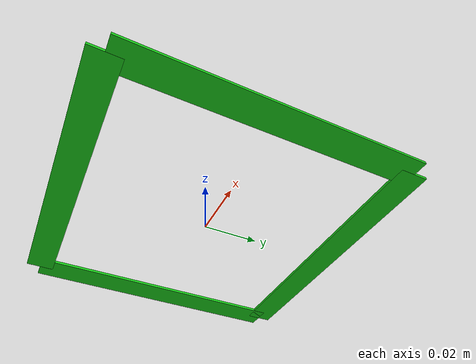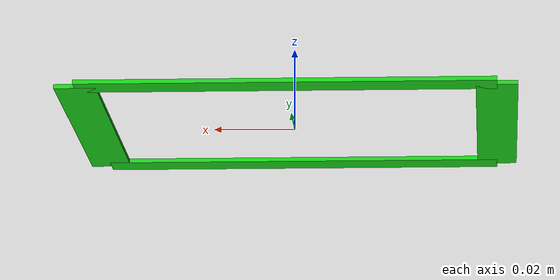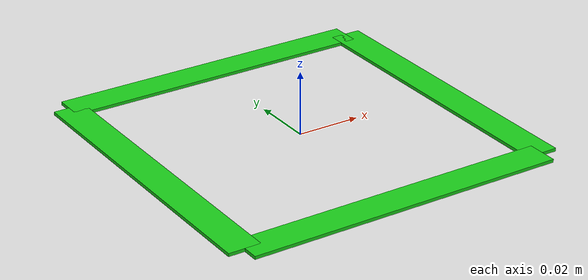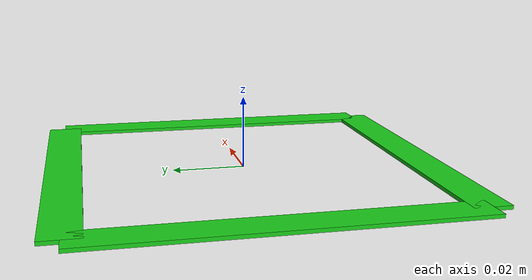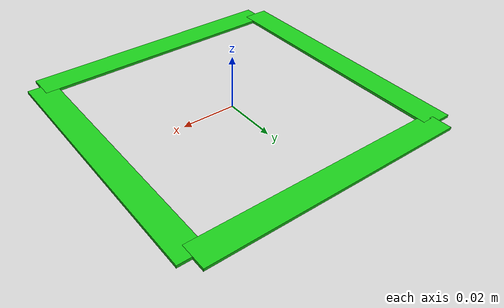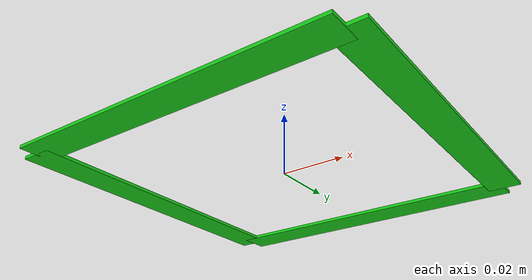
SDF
<?xml version="1.0" ?>
<sdf version="1.6">
  <model name="goal_frame">
    <!-- 绝对静态，不参与物理 -->
    <static>true</static>

    <!-- 整体位置由 spawn_entity.py 决定 -->
    <!-- z = 0.001，贴地但不完全重合 -->
    <pose>0 0 0.001 0 0 0</pose>

    <link name="frame_link">

      <!-- 上边 -->
      <visual name="top_visual">
        <pose>0 0.05 0 0 0 0</pose>
        <geometry>
          <box>
            <!-- 厚度修改为 0.01 -->
            <size>0.1 0.01 0.001</size>
          </box>
        </geometry>
        <material>
          <ambient>0.1 0.8 0.1 1</ambient>
          <diffuse>0.1 0.8 0.1 1</diffuse>
        </material>
      </visual>

      <!-- 下边 -->
      <visual name="bottom_visual">
        <pose>0 -0.05 0 0 0 0</pose>
        <geometry>
          <box>
            <size>0.1 0.01 0.001</size>
          </box>
        </geometry>
        <material>
          <ambient>0.1 0.8 0.1 1</ambient>
          <diffuse>0.1 0.8 0.1 1</diffuse>
        </material>
      </visual>

      <!-- 左边 -->
      <visual name="left_visual">
        <pose>-0.05 0 0 0 0 0</pose>
        <geometry>
          <box>
            <size>0.01 0.1 0.001</size>
          </box>
        </geometry>
        <material>
          <ambient>0.1 0.8 0.1 1</ambient>
          <diffuse>0.1 0.8 0.1 1</diffuse>
        </material>
      </visual>

      <!-- 右边 -->
      <visual name="right_visual">
        <pose>0.05 0 0 0 0 0</pose>
        <geometry>
          <box>
            <size>0.01 0.1 0.001</size>
          </box>
        </geometry>
        <material>
          <ambient>0.1 0.8 0.1 1</ambient>
          <diffuse>0.1 0.8 0.1 1</diffuse>
        </material>
      </visual>

    </link>
  </model>
</sdf>
